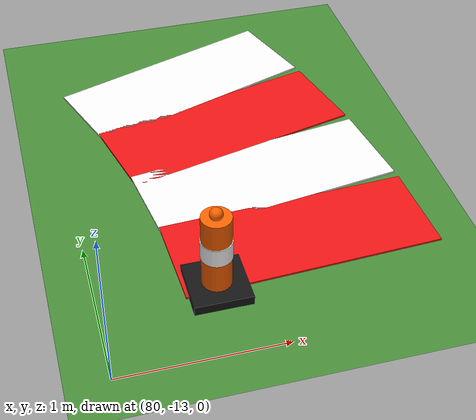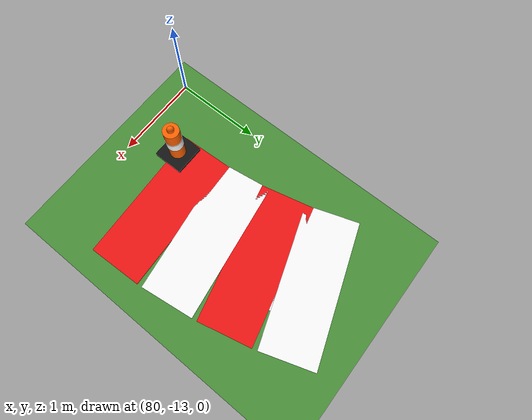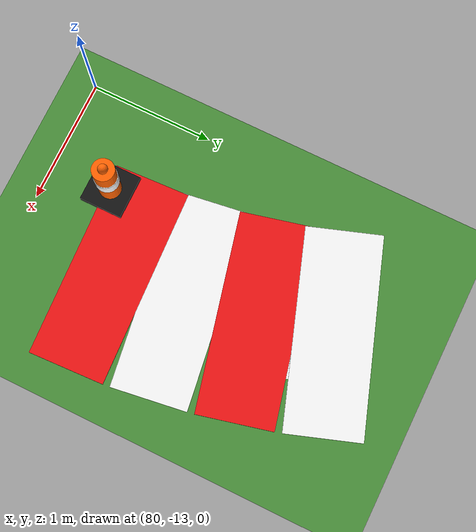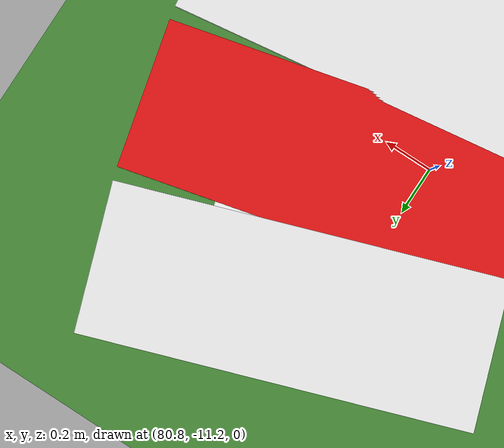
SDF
<sdf version="1.6">
 <world name="sem_silesia_ring_2026">
  <model name="ground_plane">
   <static>true</static>
   <link name="link">
    <collision name="collision">
     <geometry><plane><normal>0 0 1</normal><size>600 600</size></plane></geometry>
     <surface><friction><ode><mu>0.6</mu><mu2>0.6</mu2></ode></friction></surface>
    </collision>
    <visual name="visual">
     <geometry><plane><normal>0 0 1</normal><size>600 600</size></plane></geometry>
     <material><ambient>0.28 0.55 0.22 1</ambient><diffuse>0.28 0.55 0.22 1</diffuse></material>
    </visual>
   </link>
  </model>
  <model name="wl_Ri_s34">
   <static>true</static>
   <pose>81.4176 -10.9593 0.0050 0 0 1.8064</pose>
   <link name="link">
    <visual name="v">
     <geometry><box><size>0.4008 0.2000 0.0040</size></box></geometry>
     <material><ambient>1 1 1 1</ambient><diffuse>1 1 1 1</diffuse></material>
    </visual>
    <collision name="c">
     <geometry><box><size>0.4008 0.2000 0.0040</size></box></geometry>
     <surface><friction><ode><mu>0.9</mu><mu2>0.9</mu2></ode></friction></surface>
    </collision>
   </link>
  </model>
  <model name="wl_Ri_jnt35">
   <static>true</static>
   <pose>81.3751 -10.7918 0.0050 0 0 0</pose>
   <link name="link">
    <visual name="v">
     <geometry><cylinder><radius>0.1000</radius><length>0.0040</length></cylinder></geometry>
     <material><ambient>1 1 1 1</ambient><diffuse>1 1 1 1</diffuse></material>
    </visual>
    <collision name="c">
     <geometry><cylinder><radius>0.1000</radius><length>0.0040</length></cylinder></geometry>
     <surface><friction><ode><mu>0.9</mu><mu2>0.9</mu2></ode></friction></surface>
    </collision>
   </link>
  </model>
  <model name="wl_Ri_s35">
   <static>true</static>
   <pose>81.3282 -10.6255 0.0050 0 0 1.8588</pose>
   <link name="link">
    <visual name="v">
     <geometry><box><size>0.4008 0.2000 0.0040</size></box></geometry>
     <material><ambient>1 1 1 1</ambient><diffuse>1 1 1 1</diffuse></material>
    </visual>
    <collision name="c">
     <geometry><box><size>0.4008 0.2000 0.0040</size></box></geometry>
     <surface><friction><ode><mu>0.9</mu><mu2>0.9</mu2></ode></friction></surface>
    </collision>
   </link>
  </model>
  <model name="wl_Ri_jnt36">
   <static>true</static>
   <pose>81.2770 -10.4605 0.0050 0 0 0</pose>
   <link name="link">
    <visual name="v">
     <geometry><cylinder><radius>0.1000</radius><length>0.0040</length></cylinder></geometry>
     <material><ambient>1 1 1 1</ambient><diffuse>1 1 1 1</diffuse></material>
    </visual>
    <collision name="c">
     <geometry><cylinder><radius>0.1000</radius><length>0.0040</length></cylinder></geometry>
     <surface><friction><ode><mu>0.9</mu><mu2>0.9</mu2></ode></friction></surface>
    </collision>
   </link>
  </model>
  <model name="wl_Ri_s36">
   <static>true</static>
   <pose>81.2214 -10.2969 0.0050 0 0 1.9111</pose>
   <link name="link">
    <visual name="v">
     <geometry><box><size>0.4008 0.2000 0.0040</size></box></geometry>
     <material><ambient>1 1 1 1</ambient><diffuse>1 1 1 1</diffuse></material>
    </visual>
    <collision name="c">
     <geometry><box><size>0.4008 0.2000 0.0040</size></box></geometry>
     <surface><friction><ode><mu>0.9</mu><mu2>0.9</mu2></ode></friction></surface>
    </collision>
   </link>
  </model>
  <model name="kR_in_k10">
   <static>true</static>
   <pose>81.2930 -12.2032 0.0120 0 0 1.6179</pose>
   <link name="link">
    <visual name="v">
     <geometry><box><size>0.6135 1.6000 0.0120</size></box></geometry>
     <material><ambient>0.92 0.08 0.08 1</ambient><diffuse>0.92 0.08 0.08 1</diffuse></material>
    </visual>
    <collision name="c">
     <geometry><box><size>0.6135 1.6000 0.0120</size></box></geometry>
     <surface><friction><ode><mu>0.9</mu><mu2>0.9</mu2></ode></friction></surface>
    </collision>
   </link>
  </model>
  <model name="kR_in_k11">
   <static>true</static>
   <pose>81.2371 -11.6123 0.0120 0 0 1.7122</pose>
   <link name="link">
    <visual name="v">
     <geometry><box><size>0.6135 1.6000 0.0120</size></box></geometry>
     <material><ambient>0.96 0.96 0.96 1</ambient><diffuse>0.96 0.96 0.96 1</diffuse></material>
    </visual>
    <collision name="c">
     <geometry><box><size>0.6135 1.6000 0.0120</size></box></geometry>
     <surface><friction><ode><mu>0.9</mu><mu2>0.9</mu2></ode></friction></surface>
    </collision>
   </link>
  </model>
  <model name="kR_in_k12">
   <static>true</static>
   <pose>81.1259 -11.0293 0.0120 0 0 1.8064</pose>
   <link name="link">
    <visual name="v">
     <geometry><box><size>0.6135 1.6000 0.0120</size></box></geometry>
     <material><ambient>0.92 0.08 0.08 1</ambient><diffuse>0.92 0.08 0.08 1</diffuse></material>
    </visual>
    <collision name="c">
     <geometry><box><size>0.6135 1.6000 0.0120</size></box></geometry>
     <surface><friction><ode><mu>0.9</mu><mu2>0.9</mu2></ode></friction></surface>
    </collision>
   </link>
  </model>
  <model name="kR_in_k13">
   <static>true</static>
   <pose>80.9603 -10.4593 0.0120 0 0 1.9007</pose>
   <link name="link">
    <visual name="v">
     <geometry><box><size>0.6135 1.6000 0.0120</size></box></geometry>
     <material><ambient>0.96 0.96 0.96 1</ambient><diffuse>0.96 0.96 0.96 1</diffuse></material>
    </visual>
    <collision name="c">
     <geometry><box><size>0.6135 1.6000 0.0120</size></box></geometry>
     <surface><friction><ode><mu>0.9</mu><mu2>0.9</mu2></ode></friction></surface>
    </collision>
   </link>
  </model>
  <model name="cn_Ri_4">
   <static>true</static>
   <pose>80.7000 -12.5000 0 0 0 0</pose>
   <link name="link">
    <visual name="base">
     <pose>0 0 0.03 0 0 0</pose>
     <geometry><box><size>0.35 0.35 0.06</size></box></geometry>
     <material><ambient>0.08 0.08 0.08 1</ambient><diffuse>0.08 0.08 0.08 1</diffuse></material>
    </visual>
    <visual name="body">
     <pose>0 0 0.30 0 0 0</pose>
     <geometry><cylinder><radius>0.09</radius><length>0.50</length></cylinder></geometry>
     <material><ambient>1.0 0.38 0.0 1</ambient><diffuse>1.0 0.38 0.0 1</diffuse></material>
    </visual>
    <visual name="stripe">
     <pose>0 0 0.32 0 0 0</pose>
     <geometry><cylinder><radius>0.095</radius><length>0.12</length></cylinder></geometry>
     <material><ambient>1 1 1 1</ambient><diffuse>1 1 1 1</diffuse></material>
    </visual>
    <visual name="tip">
     <pose>0 0 0.57 0 0 0</pose>
     <geometry><sphere><radius>0.04</radius></sphere></geometry>
     <material><ambient>1.0 0.38 0.0 1</ambient><diffuse>1.0 0.38 0.0 1</diffuse></material>
    </visual>
    <collision name="c">
     <pose>0 0 0.28 0 0 0</pose>
     <geometry><cylinder><radius>0.09</radius><length>0.56</length></cylinder></geometry>
    </collision>
   </link>
  </model>
 </world>
</sdf>
